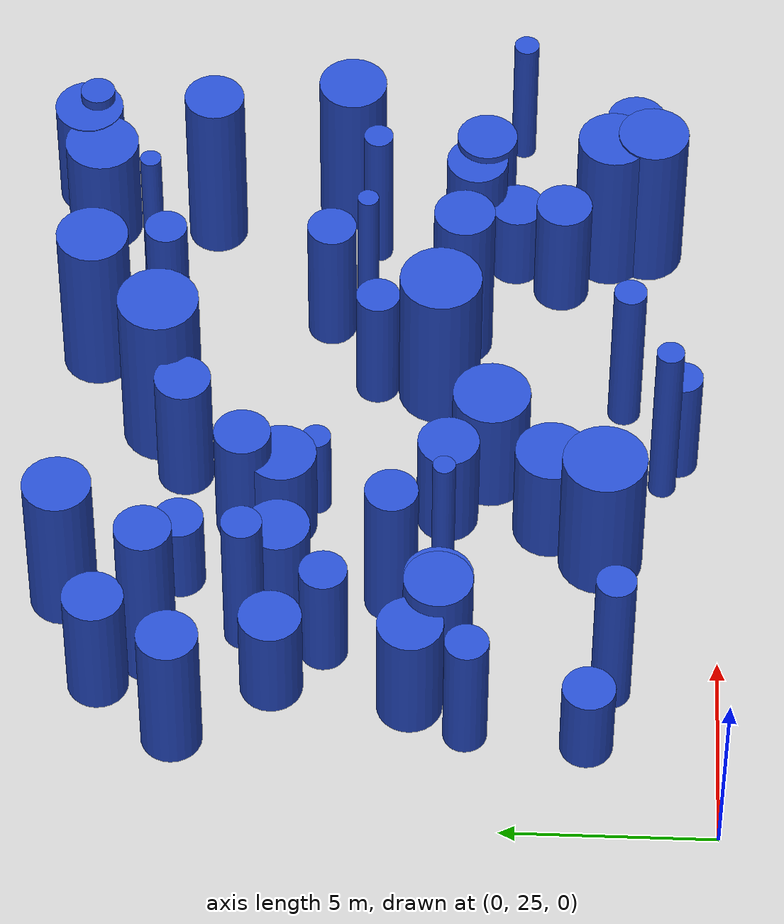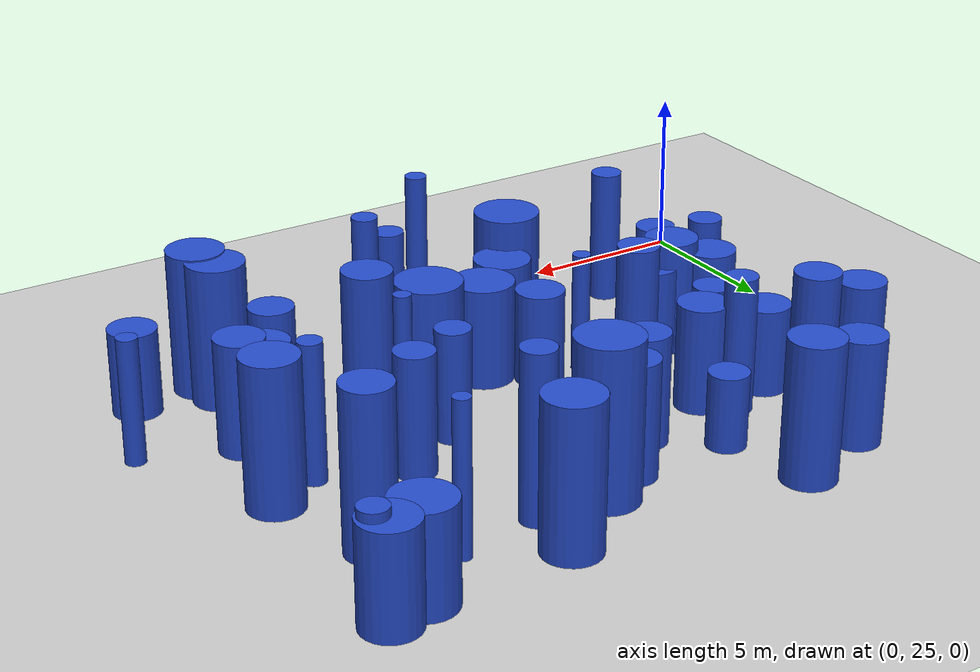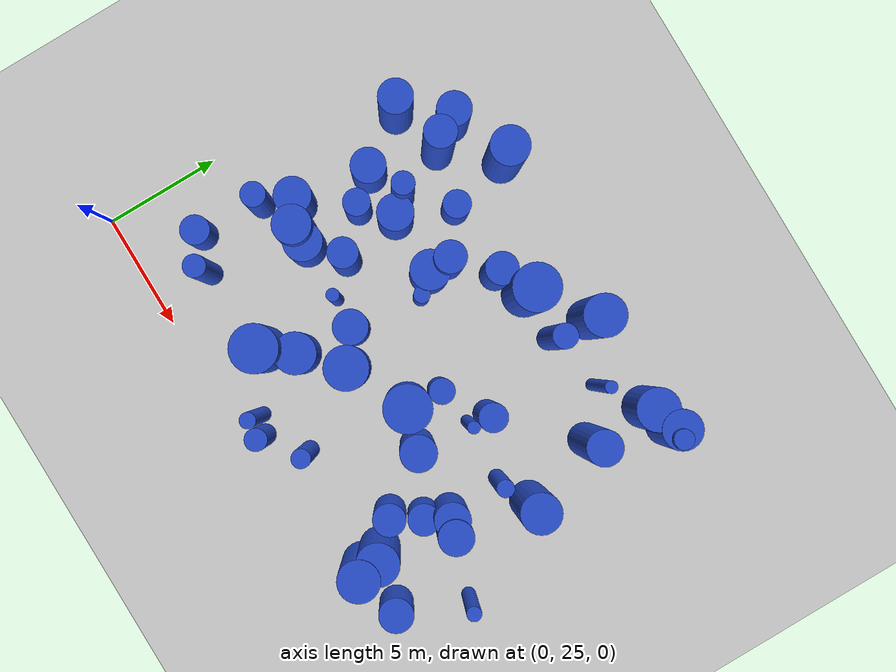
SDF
<sdf version="1.6">
 <world name="default">
  <model name="ground_plane">
   <static>1</static>
   <link name="link">
    <collision name="collision">
     <geometry><plane><normal>0 0 1</normal><size>100 100</size></plane></geometry>
     <surface><friction><ode><mu>100</mu><mu2>50</mu2></ode></friction></surface>
    </collision>
    <visual name="visual">
     <cast_shadows>0</cast_shadows>
     <geometry><plane><normal>0 0 1</normal><size>100 100</size></plane></geometry>
     <material>
      <script><uri>file://media/materials/scripts/gazebo.material</uri><name>Gazebo/Grey</name></script>
     </material>
    </visual>
   </link>
  </model>
  <model name="1">
   <static>0</static>
   <link name="link">
    <inertial>
     <mass>2</mass>
     <inertia><ixx>1.7057</ixx><ixy>0</ixy><ixz>0</ixz><iyy>1.7057</iyy><iyz>0</iyz><izz>0.32089</izz></inertia>
    </inertial>
    <collision name="collision">
     <geometry><cylinder><length>3.04492</length><radius>0.566472</radius></cylinder></geometry>
     <surface><contact><collide_without_contact>1</collide_without_contact></contact></surface>
    </collision>
    <visual name="visual">
     <geometry><cylinder><length>3.04492</length><radius>0.566472</radius></cylinder></geometry>
     <material>
      <script><uri>file://media/materials/scripts/gazebo.material</uri><name>Gazebo/Blue</name></script>
     </material>
    </visual>
    <gravity>0</gravity>
   </link>
   <pose>5.05368 34.1911 1.52246 0 -0 0</pose>
  </model>
  <model name="27">
   <static>0</static>
   <link name="link">
    <inertial>
     <mass>2</mass>
     <inertia><ixx>2.96729</ixx><ixy>0</ixy><ixz>0</ixz><iyy>2.96729</iyy><iyz>0</iyz><izz>0.127909</izz></inertia>
    </inertial>
    <collision name="collision">
     <geometry><cylinder><length>4.17373</length><radius>0.357643</radius></cylinder></geometry>
     <surface><contact><collide_without_contact>1</collide_without_contact></contact></surface>
    </collision>
    <visual name="visual">
     <geometry><cylinder><length>4.17373</length><radius>0.357643</radius></cylinder></geometry>
     <material>
      <script><uri>file://media/materials/scripts/gazebo.material</uri><name>Gazebo/Blue</name></script>
     </material>
    </visual>
    <gravity>0</gravity>
   </link>
   <pose>17.6873 33.3868 2.08686 0 -0 0</pose>
  </model>
  <model name="38">
   <static>0</static>
   <link name="link">
    <inertial>
     <mass>2</mass>
     <inertia><ixx>4.19414</ixx><ixy>0</ixy><ixz>0</ixz><iyy>4.19414</iyy><iyz>0</iyz><izz>0.44377</izz></inertia>
    </inertial>
    <collision name="collision">
     <geometry><cylinder><length>4.88196</length><radius>0.66616</radius></cylinder></geometry>
     <surface><contact><collide_without_contact>1</collide_without_contact></contact></surface>
    </collision>
    <visual name="visual">
     <geometry><cylinder><length>4.88196</length><radius>0.66616</radius></cylinder></geometry>
     <material>
      <script><uri>file://media/materials/scripts/gazebo.material</uri><name>Gazebo/Blue</name></script>
     </material>
    </visual>
    <gravity>0</gravity>
   </link>
   <pose>4.65444 38.2486 2.44098 0 -0 0</pose>
  </model>
  <model name="39">
   <static>0</static>
   <link name="link">
    <inertial>
     <mass>2</mass>
     <inertia><ixx>1.84137</ixx><ixy>0</ixy><ixz>0</ixz><iyy>1.84137</iyy><iyz>0</iyz><izz>0.459908</izz></inertia>
    </inertial>
    <collision name="collision">
     <geometry><cylinder><length>3.10942</length><radius>0.678165</radius></cylinder></geometry>
     <surface><contact><collide_without_contact>1</collide_without_contact></contact></surface>
    </collision>
    <visual name="visual">
     <geometry><cylinder><length>3.10942</length><radius>0.678165</radius></cylinder></geometry>
     <material>
      <script><uri>file://media/materials/scripts/gazebo.material</uri><name>Gazebo/Blue</name></script>
     </material>
    </visual>
    <gravity>0</gravity>
   </link>
   <pose>16.5405 28.8099 1.55471 0 -0 0</pose>
  </model>
  <model name="49">
   <static>0</static>
   <link name="link">
    <inertial>
     <mass>2</mass>
     <inertia><ixx>1.03869</ixx><ixy>0</ixy><ixz>0</ixz><iyy>1.03869</iyy><iyz>0</iyz><izz>0.208201</izz></inertia>
    </inertial>
    <collision name="collision">
     <geometry><cylinder><length>2.36803</length><radius>0.45629</radius></cylinder></geometry>
     <surface><contact><collide_without_contact>1</collide_without_contact></contact></surface>
    </collision>
    <visual name="visual">
     <geometry><cylinder><length>2.36803</length><radius>0.45629</radius></cylinder></geometry>
     <material>
      <script><uri>file://media/materials/scripts/gazebo.material</uri><name>Gazebo/Blue</name></script>
     </material>
    </visual>
    <gravity>0</gravity>
   </link>
   <pose>12.9469 31.5137 1.18401 0 -0 0</pose>
  </model>
  <model name="50">
   <static>0</static>
   <link name="link">
    <inertial>
     <mass>2</mass>
     <inertia><ixx>3.72286</ixx><ixy>0</ixy><ixz>0</ixz><iyy>3.72286</iyy><iyz>0</iyz><izz>0.752278</izz></inertia>
    </inertial>
    <collision name="collision">
     <geometry><cylinder><length>4.4811</length><radius>0.86734</radius></cylinder></geometry>
     <surface><contact><collide_without_contact>1</collide_without_contact></contact></surface>
    </collision>
    <visual name="visual">
     <geometry><cylinder><length>4.4811</length><radius>0.86734</radius></cylinder></geometry>
     <material>
      <script><uri>file://media/materials/scripts/gazebo.material</uri><name>Gazebo/Blue</name></script>
     </material>
    </visual>
    <gravity>0</gravity>
   </link>
   <pose>13.9115 40.0974 2.24055 0 -0 0</pose>
  </model>
  <model name="61">
   <static>0</static>
   <link name="link">
    <inertial>
     <mass>2</mass>
     <inertia>
      <ixx>4.01912</ixx>
      <ixy>0</ixy>
      <ixz>0</ixz>
      <iyy>4.01912</iyy>
      <iyz>0</iyz>
      <izz>0.0645632</izz>
     </inertia>
    </inertial>
    <collision name="collision">
     <geometry><cylinder><length>4.89091</length><radius>0.254093</radius></cylinder></geometry>
     <surface><contact><collide_without_contact>1</collide_without_contact></contact></surface>
    </collision>
    <visual name="visual">
     <geometry><cylinder><length>4.89091</length><radius>0.254093</radius></cylinder></geometry>
     <material>
      <script><uri>file://media/materials/scripts/gazebo.material</uri><name>Gazebo/Blue</name></script>
     </material>
    </visual>
    <gravity>0</gravity>
   </link>
   <pose>14.9692 33.5353 2.44546 0 -0 0</pose>
  </model>
  <model name="63">
   <static>0</static>
   <link name="link">
    <inertial>
     <mass>2</mass>
     <inertia><ixx>1.90981</ixx><ixy>0</ixy><ixz>0</ixz><iyy>1.90981</iyy><iyz>0</iyz><izz>0.596313</izz></inertia>
    </inertial>
    <collision name="collision">
     <geometry><cylinder><length>3.10965</length><radius>0.772213</radius></cylinder></geometry>
     <surface><contact><collide_without_contact>1</collide_without_contact></contact></surface>
    </collision>
    <visual name="visual">
     <geometry><cylinder><length>3.10965</length><radius>0.772213</radius></cylinder></geometry>
     <material>
      <script><uri>file://media/materials/scripts/gazebo.material</uri><name>Gazebo/Blue</name></script>
     </material>
    </visual>
    <gravity>0</gravity>
   </link>
   <pose>3.52675 32.1403 1.55483 0 -0 0</pose>
  </model>
  <model name="75">
   <static>0</static>
   <link name="link">
    <inertial>
     <mass>2</mass>
     <inertia><ixx>2.73538</ixx><ixy>0</ixy><ixz>0</ixz><iyy>2.73538</iyy><iyz>0</iyz><izz>0.514926</izz></inertia>
    </inertial>
    <collision name="collision">
     <geometry><cylinder><length>3.85584</length><radius>0.717584</radius></cylinder></geometry>
     <surface><contact><collide_without_contact>1</collide_without_contact></contact></surface>
    </collision>
    <visual name="visual">
     <geometry><cylinder><length>3.85584</length><radius>0.717584</radius></cylinder></geometry>
     <material>
      <script><uri>file://media/materials/scripts/gazebo.material</uri><name>Gazebo/Blue</name></script>
     </material>
    </visual>
    <gravity>0</gravity>
   </link>
   <pose>2.41334 37.5859 1.92792 0 -0 0</pose>
  </model>
  <model name="89">
   <static>0</static>
   <link name="link">
    <inertial>
     <mass>2</mass>
     <inertia>
      <ixx>2.40436</ixx>
      <ixy>0</ixy>
      <ixz>0</ixz>
      <iyy>2.40436</iyy>
      <iyz>0</iyz>
      <izz>0.0933567</izz>
     </inertia>
    </inertial>
    <collision name="collision">
     <geometry><cylinder><length>3.76113</length><radius>0.305543</radius></cylinder></geometry>
     <surface><contact><collide_without_contact>1</collide_without_contact></contact></surface>
    </collision>
    <visual name="visual">
     <geometry><cylinder><length>3.76113</length><radius>0.305543</radius></cylinder></geometry>
     <material>
      <script><uri>file://media/materials/scripts/gazebo.material</uri><name>Gazebo/Blue</name></script>
     </material>
    </visual>
    <gravity>0</gravity>
   </link>
   <pose>21.3115 29.8257 1.88056 0 -0 0</pose>
  </model>
  <model name="93">
   <static>0</static>
   <link name="link">
    <inertial>
     <mass>2</mass>
     <inertia><ixx>2.00699</ixx><ixy>0</ixy><ixz>0</ixz><iyy>2.00699</iyy><iyz>0</iyz><izz>0.571679</izz></inertia>
    </inertial>
    <collision name="collision">
     <geometry><cylinder><length>3.21355</length><radius>0.756095</radius></cylinder></geometry>
     <surface><contact><collide_without_contact>1</collide_without_contact></contact></surface>
    </collision>
    <visual name="visual">
     <geometry><cylinder><length>3.21355</length><radius>0.756095</radius></cylinder></geometry>
     <material>
      <script><uri>file://media/materials/scripts/gazebo.material</uri><name>Gazebo/Blue</name></script>
     </material>
    </visual>
    <gravity>0</gravity>
   </link>
   <pose>6.21176 35.2915 1.60678 0 -0 0</pose>
  </model>
  <model name="104">
   <static>0</static>
   <link name="link">
    <inertial>
     <mass>2</mass>
     <inertia><ixx>1.92082</ixx><ixy>0</ixy><ixz>0</ixz><iyy>1.92082</iyy><iyz>0</iyz><izz>0.825903</izz></inertia>
    </inertial>
    <collision name="collision">
     <geometry><cylinder><length>3.00786</length><radius>0.908792</radius></cylinder></geometry>
     <surface><contact><collide_without_contact>1</collide_without_contact></contact></surface>
    </collision>
    <visual name="visual">
     <geometry><cylinder><length>3.00786</length><radius>0.908792</radius></cylinder></geometry>
     <material>
      <script><uri>file://media/materials/scripts/gazebo.material</uri><name>Gazebo/Blue</name></script>
     </material>
    </visual>
    <gravity>0</gravity>
   </link>
   <pose>18.3119 40.2452 1.50393 0 -0 0</pose>
  </model>
  <model name="119">
   <static>0</static>
   <link name="link">
    <inertial>
     <mass>2</mass>
     <inertia><ixx>1.01805</ixx><ixy>0</ixy><ixz>0</ixz><iyy>1.01805</iyy><iyz>0</iyz><izz>0.447713</izz></inertia>
    </inertial>
    <collision name="collision">
     <geometry><cylinder><length>2.18293</length><radius>0.669113</radius></cylinder></geometry>
     <surface><contact><collide_without_contact>1</collide_without_contact></contact></surface>
    </collision>
    <visual name="visual">
     <geometry><cylinder><length>2.18293</length><radius>0.669113</radius></cylinder></geometry>
     <material>
      <script><uri>file://media/materials/scripts/gazebo.material</uri><name>Gazebo/Blue</name></script>
     </material>
    </visual>
    <gravity>0</gravity>
   </link>
   <pose>17.3628 29.9476 1.09146 0 -0 0</pose>
  </model>
  <model name="130">
   <static>0</static>
   <link name="link">
    <inertial>
     <mass>2</mass>
     <inertia><ixx>3.39599</ixx><ixy>0</ixy><ixz>0</ixz><iyy>3.39599</iyy><iyz>0</iyz><izz>0.973982</izz></inertia>
    </inertial>
    <collision name="collision">
     <geometry><cylinder><length>4.1778</length><radius>0.986905</radius></cylinder></geometry>
     <surface><contact><collide_without_contact>1</collide_without_contact></contact></surface>
    </collision>
    <visual name="visual">
     <geometry><cylinder><length>4.1778</length><radius>0.986905</radius></cylinder></geometry>
     <material>
      <script><uri>file://media/materials/scripts/gazebo.material</uri><name>Gazebo/Blue</name></script>
     </material>
    </visual>
    <gravity>0</gravity>
   </link>
   <pose>13.0958 31.7293 2.0889 0 -0 0</pose>
  </model>
  <model name="131">
   <static>0</static>
   <link name="link">
    <inertial>
     <mass>2</mass>
     <inertia><ixx>1.00721</ixx><ixy>0</ixy><ixz>0</ixz><iyy>1.00721</iyy><iyz>0</iyz><izz>0.383866</izz></inertia>
    </inertial>
    <collision name="collision">
     <geometry><cylinder><length>2.2117</length><radius>0.61957</radius></cylinder></geometry>
     <surface><contact><collide_without_contact>1</collide_without_contact></contact></surface>
    </collision>
    <visual name="visual">
     <geometry><cylinder><length>2.2117</length><radius>0.61957</radius></cylinder></geometry>
     <material>
      <script><uri>file://media/materials/scripts/gazebo.material</uri><name>Gazebo/Blue</name></script>
     </material>
    </visual>
    <gravity>0</gravity>
   </link>
   <pose>2.52632 28.0362 1.10585 0 -0 0</pose>
  </model>
  <model name="136">
   <static>0</static>
   <link name="link">
    <inertial>
     <mass>2</mass>
     <inertia><ixx>1.51332</ixx><ixy>0</ixy><ixz>0</ixz><iyy>1.51332</iyy><iyz>0</iyz><izz>0.707687</izz></inertia>
    </inertial>
    <collision name="collision">
     <geometry><cylinder><length>2.63759</length><radius>0.841241</radius></cylinder></geometry>
     <surface><contact><collide_without_contact>1</collide_without_contact></contact></surface>
    </collision>
    <visual name="visual">
     <geometry><cylinder><length>2.63759</length><radius>0.841241</radius></cylinder></geometry>
     <material>
      <script><uri>file://media/materials/scripts/gazebo.material</uri><name>Gazebo/Blue</name></script>
     </material>
    </visual>
    <gravity>0</gravity>
   </link>
   <pose>8.84388 35.3527 1.31879 0 -0 0</pose>
  </model>
  <model name="139">
   <static>0</static>
   <link name="link">
    <inertial>
     <mass>2</mass>
     <inertia><ixx>2.02174</ixx><ixy>0</ixy><ixz>0</ixz><iyy>2.02174</iyy><iyz>0</iyz><izz>0.279239</izz></inertia>
    </inertial>
    <collision name="collision">
     <geometry><cylinder><length>3.36046</length><radius>0.528431</radius></cylinder></geometry>
     <surface><contact><collide_without_contact>1</collide_without_contact></contact></surface>
    </collision>
    <visual name="visual">
     <geometry><cylinder><length>3.36046</length><radius>0.528431</radius></cylinder></geometry>
     <material>
      <script><uri>file://media/materials/scripts/gazebo.material</uri><name>Gazebo/Blue</name></script>
     </material>
    </visual>
    <gravity>0</gravity>
   </link>
   <pose>13.2306 33.2333 1.68023 0 -0 0</pose>
  </model>
  <model name="141">
   <static>0</static>
   <link name="link">
    <inertial>
     <mass>2</mass>
     <inertia>
      <ixx>1.62132</ixx>
      <ixy>0</ixy>
      <ixz>0</ixz>
      <iyy>1.62132</iyy>
      <iyz>0</iyz>
      <izz>0.0885588</izz>
     </inertia>
    </inertial>
    <collision name="collision">
     <geometry><cylinder><length>3.07608</length><radius>0.297588</radius></cylinder></geometry>
     <surface><contact><collide_without_contact>1</collide_without_contact></contact></surface>
    </collision>
    <visual name="visual">
     <geometry><cylinder><length>3.07608</length><radius>0.297588</radius></cylinder></geometry>
     <material>
      <script><uri>file://media/materials/scripts/gazebo.material</uri><name>Gazebo/Blue</name></script>
     </material>
    </visual>
    <gravity>0</gravity>
   </link>
   <pose>3.8277 32.3476 1.53804 0 -0 0</pose>
  </model>
  <model name="148">
   <static>0</static>
   <link name="link">
    <inertial>
     <mass>2</mass>
     <inertia><ixx>3.28458</ixx><ixy>0</ixy><ixz>0</ixz><iyy>3.28458</iyy><iyz>0</iyz><izz>0.657645</izz></inertia>
    </inertial>
    <collision name="collision">
     <geometry><cylinder><length>4.21124</length><radius>0.810953</radius></cylinder></geometry>
     <surface><contact><collide_without_contact>1</collide_without_contact></contact></surface>
    </collision>
    <visual name="visual">
     <geometry><cylinder><length>4.21124</length><radius>0.810953</radius></cylinder></geometry>
     <material>
      <script><uri>file://media/materials/scripts/gazebo.material</uri><name>Gazebo/Blue</name></script>
     </material>
    </visual>
    <gravity>0</gravity>
   </link>
   <pose>6.40553 40.373 2.10562 0 -0 0</pose>
  </model>
  <model name="157">
   <static>0</static>
   <link name="link">
    <inertial>
     <mass>2</mass>
     <inertia><ixx>2.97609</ixx><ixy>0</ixy><ixz>0</ixz><iyy>2.97609</iyy><iyz>0</iyz><izz>0.230084</izz></inertia>
    </inertial>
    <collision name="collision">
     <geometry><cylinder><length>4.14322</length><radius>0.47967</radius></cylinder></geometry>
     <surface><contact><collide_without_contact>1</collide_without_contact></contact></surface>
    </collision>
    <visual name="visual">
     <geometry><cylinder><length>4.14322</length><radius>0.47967</radius></cylinder></geometry>
     <material>
      <script><uri>file://media/materials/scripts/gazebo.material</uri><name>Gazebo/Blue</name></script>
     </material>
    </visual>
    <gravity>0</gravity>
   </link>
   <pose>5.5037 36.0728 2.07161 0 -0 0</pose>
  </model>
  <model name="163">
   <static>0</static>
   <link name="link">
    <inertial>
     <mass>2</mass>
     <inertia><ixx>1.08186</ixx><ixy>0</ixy><ixz>0</ixz><iyy>1.08186</iyy><iyz>0</iyz><izz>0.122551</izz></inertia>
    </inertial>
    <collision name="collision">
     <geometry><cylinder><length>2.47457</length><radius>0.350073</radius></cylinder></geometry>
     <surface><contact><collide_without_contact>1</collide_without_contact></contact></surface>
    </collision>
    <visual name="visual">
     <geometry><cylinder><length>2.47457</length><radius>0.350073</radius></cylinder></geometry>
     <material>
      <script><uri>file://media/materials/scripts/gazebo.material</uri><name>Gazebo/Blue</name></script>
     </material>
    </visual>
    <gravity>0</gravity>
   </link>
   <pose>9.51663 34.5533 1.23729 0 -0 0</pose>
  </model>
  <model name="180">
   <static>0</static>
   <link name="link">
    <inertial>
     <mass>2</mass>
     <inertia>
      <ixx>1.46639</ixx>
      <ixy>0</ixy>
      <ixz>0</ixz>
      <iyy>1.46639</iyy>
      <iyz>0</iyz>
      <izz>0.0758042</izz>
     </inertia>
    </inertial>
    <collision name="collision">
     <geometry><cylinder><length>2.92762</length><radius>0.275326</radius></cylinder></geometry>
     <surface><contact><collide_without_contact>1</collide_without_contact></contact></surface>
    </collision>
    <visual name="visual">
     <geometry><cylinder><length>2.92762</length><radius>0.275326</radius></cylinder></geometry>
     <material>
      <script><uri>file://media/materials/scripts/gazebo.material</uri><name>Gazebo/Blue</name></script>
     </material>
    </visual>
    <gravity>0</gravity>
   </link>
   <pose>5.12463 34.3902 1.46381 0 -0 0</pose>
  </model>
  <model name="197">
   <static>0</static>
   <link name="link">
    <inertial>
     <mass>2</mass>
     <inertia><ixx>3.29965</ixx><ixy>0</ixy><ixz>0</ixz><iyy>3.29965</iyy><iyz>0</iyz><izz>0.154642</izz></inertia>
    </inertial>
    <collision name="collision">
     <geometry><cylinder><length>4.39704</length><radius>0.393245</radius></cylinder></geometry>
     <surface><contact><collide_without_contact>1</collide_without_contact></contact></surface>
    </collision>
    <visual name="visual">
     <geometry><cylinder><length>4.39704</length><radius>0.393245</radius></cylinder></geometry>
     <material>
      <script><uri>file://media/materials/scripts/gazebo.material</uri><name>Gazebo/Blue</name></script>
     </material>
    </visual>
    <gravity>0</gravity>
   </link>
   <pose>18.9599 33.9575 2.19852 0 -0 0</pose>
  </model>
  <model name="208">
   <static>0</static>
   <link name="link">
    <inertial>
     <mass>2</mass>
     <inertia><ixx>4.14013</ixx><ixy>0</ixy><ixz>0</ixz><iyy>4.14013</iyy><iyz>0</iyz><izz>0.529573</izz></inertia>
    </inertial>
    <collision name="collision">
     <geometry><cylinder><length>4.82204</length><radius>0.727718</radius></cylinder></geometry>
     <surface><contact><collide_without_contact>1</collide_without_contact></contact></surface>
    </collision>
    <visual name="visual">
     <geometry><cylinder><length>4.82204</length><radius>0.727718</radius></cylinder></geometry>
     <material>
      <script><uri>file://media/materials/scripts/gazebo.material</uri><name>Gazebo/Blue</name></script>
     </material>
    </visual>
    <gravity>0</gravity>
   </link>
   <pose>18.2233 37.4165 2.41102 0 -0 0</pose>
  </model>
  <model name="217">
   <static>0</static>
   <link name="link">
    <inertial>
     <mass>2</mass>
     <inertia><ixx>1.62463</ixx><ixy>0</ixy><ixz>0</ixz><iyy>1.62463</iyy><iyz>0</iyz><izz>0.538229</izz></inertia>
    </inertial>
    <collision name="collision">
     <geometry><cylinder><length>2.85186</length><radius>0.733641</radius></cylinder></geometry>
     <surface><contact><collide_without_contact>1</collide_without_contact></contact></surface>
    </collision>
    <visual name="visual">
     <geometry><cylinder><length>2.85186</length><radius>0.733641</radius></cylinder></geometry>
     <material>
      <script><uri>file://media/materials/scripts/gazebo.material</uri><name>Gazebo/Blue</name></script>
     </material>
    </visual>
    <gravity>0</gravity>
   </link>
   <pose>9.16884 31.4224 1.42593 0 -0 0</pose>
  </model>
  <model name="243">
   <static>0</static>
   <link name="link">
    <inertial>
     <mass>2</mass>
     <inertia><ixx>1.88846</ixx><ixy>0</ixy><ixz>0</ixz><iyy>1.88846</iyy><iyz>0</iyz><izz>0.713158</izz></inertia>
    </inertial>
    <collision name="collision">
     <geometry><cylinder><length>3.03171</length><radius>0.844487</radius></cylinder></geometry>
     <surface><contact><collide_without_contact>1</collide_without_contact></contact></surface>
    </collision>
    <visual name="visual">
     <geometry><cylinder><length>3.03171</length><radius>0.844487</radius></cylinder></geometry>
     <material>
      <script><uri>file://media/materials/scripts/gazebo.material</uri><name>Gazebo/Blue</name></script>
     </material>
    </visual>
    <gravity>0</gravity>
   </link>
   <pose>19.4892 40.6444 1.51586 0 -0 0</pose>
  </model>
  <model name="245">
   <static>0</static>
   <link name="link">
    <inertial>
     <mass>2</mass>
     <inertia><ixx>1.91162</ixx><ixy>0</ixy><ixz>0</ixz><iyy>1.91162</iyy><iyz>0</iyz><izz>0.180351</izz></inertia>
    </inertial>
    <collision name="collision">
     <geometry><cylinder><length>3.30585</length><radius>0.424677</radius></cylinder></geometry>
     <surface><contact><collide_without_contact>1</collide_without_contact></contact></surface>
    </collision>
    <visual name="visual">
     <geometry><cylinder><length>3.30585</length><radius>0.424677</radius></cylinder></geometry>
     <material>
      <script><uri>file://media/materials/scripts/gazebo.material</uri><name>Gazebo/Blue</name></script>
     </material>
    </visual>
    <gravity>0</gravity>
   </link>
   <pose>19.7797 40.4443 1.65293 0 -0 0</pose>
  </model>
  <model name="253">
   <static>0</static>
   <link name="link">
    <inertial>
     <mass>2</mass>
     <inertia><ixx>3.61777</ixx><ixy>0</ixy><ixz>0</ixz><iyy>3.61777</iyy><iyz>0</iyz><izz>0.690092</izz></inertia>
    </inertial>
    <collision name="collision">
     <geometry><cylinder><length>4.43129</length><radius>0.830718</radius></cylinder></geometry>
     <surface><contact><collide_without_contact>1</collide_without_contact></contact></surface>
    </collision>
    <visual name="visual">
     <geometry><cylinder><length>4.43129</length><radius>0.830718</radius></cylinder></geometry>
     <material>
      <script><uri>file://media/materials/scripts/gazebo.material</uri><name>Gazebo/Blue</name></script>
     </material>
    </visual>
    <gravity>0</gravity>
   </link>
   <pose>19.1888 34.0688 2.21565 0 -0 0</pose>
  </model>
  <model name="261">
   <static>0</static>
   <link name="link">
    <inertial>
     <mass>2</mass>
     <inertia><ixx>1.59799</ixx><ixy>0</ixy><ixz>0</ixz><iyy>1.59799</iyy><iyz>0</iyz><izz>0.664909</izz></inertia>
    </inertial>
    <collision name="collision">
     <geometry><cylinder><length>2.75558</length><radius>0.81542</radius></cylinder></geometry>
     <surface><contact><collide_without_contact>1</collide_without_contact></contact></surface>
    </collision>
    <visual name="visual">
     <geometry><cylinder><length>2.75558</length><radius>0.81542</radius></cylinder></geometry>
     <material>
      <script><uri>file://media/materials/scripts/gazebo.material</uri><name>Gazebo/Blue</name></script>
     </material>
    </visual>
    <gravity>0</gravity>
   </link>
   <pose>5.24713 31.5423 1.37779 0 -0 0</pose>
  </model>
  <model name="263">
   <static>0</static>
   <link name="link">
    <inertial>
     <mass>2</mass>
     <inertia><ixx>2.23006</ixx><ixy>0</ixy><ixz>0</ixz><iyy>2.23006</iyy><iyz>0</iyz><izz>0.544185</izz></inertia>
    </inertial>
    <collision name="collision">
     <geometry><cylinder><length>3.4275</length><radius>0.737689</radius></cylinder></geometry>
     <surface><contact><collide_without_contact>1</collide_without_contact></contact></surface>
    </collision>
    <visual name="visual">
     <geometry><cylinder><length>3.4275</length><radius>0.737689</radius></cylinder></geometry>
     <material>
      <script><uri>file://media/materials/scripts/gazebo.material</uri><name>Gazebo/Blue</name></script>
     </material>
    </visual>
    <gravity>0</gravity>
   </link>
   <pose>18.4664 30.7391 1.71375 0 -0 0</pose>
  </model>
  <model name="276">
   <static>0</static>
   <link name="link">
    <inertial>
     <mass>2</mass>
     <inertia>
      <ixx>3.47017</ixx>
      <ixy>0</ixy>
      <ixz>0</ixz>
      <iyy>3.47017</iyy>
      <iyz>0</iyz>
      <izz>0.0649683</izz>
     </inertia>
    </inertial>
    <collision name="collision">
     <geometry><cylinder><length>4.5416</length><radius>0.254889</radius></cylinder></geometry>
     <surface><contact><collide_without_contact>1</collide_without_contact></contact></surface>
    </collision>
    <visual name="visual">
     <geometry><cylinder><length>4.5416</length><radius>0.254889</radius></cylinder></geometry>
     <material>
      <script><uri>file://media/materials/scripts/gazebo.material</uri><name>Gazebo/Blue</name></script>
     </material>
    </visual>
    <gravity>0</gravity>
   </link>
   <pose>16.3851 38.8601 2.2708 0 -0 0</pose>
  </model>
  <model name="292">
   <static>0</static>
   <link name="link">
    <inertial>
     <mass>2</mass>
     <inertia><ixx>3.94851</ixx><ixy>0</ixy><ixz>0</ixz><iyy>3.94851</iyy><iyz>0</iyz><izz>0.541728</izz></inertia>
    </inertial>
    <collision name="collision">
     <geometry><cylinder><length>4.69744</length><radius>0.736022</radius></cylinder></geometry>
     <surface><contact><collide_without_contact>1</collide_without_contact></contact></surface>
    </collision>
    <visual name="visual">
     <geometry><cylinder><length>4.69744</length><radius>0.736022</radius></cylinder></geometry>
     <material>
      <script><uri>file://media/materials/scripts/gazebo.material</uri><name>Gazebo/Blue</name></script>
     </material>
    </visual>
    <gravity>0</gravity>
   </link>
   <pose>14.751 31.215 2.34872 0 -0 0</pose>
  </model>
  <model name="321">
   <static>0</static>
   <link name="link">
    <inertial>
     <mass>2</mass>
     <inertia><ixx>3.00978</ixx><ixy>0</ixy><ixz>0</ixz><iyy>3.00978</iyy><iyz>0</iyz><izz>0.219151</izz></inertia>
    </inertial>
    <collision name="collision">
     <geometry><cylinder><length>4.17148</length><radius>0.468135</radius></cylinder></geometry>
     <surface><contact><collide_without_contact>1</collide_without_contact></contact></surface>
    </collision>
    <visual name="visual">
     <geometry><cylinder><length>4.17148</length><radius>0.468135</radius></cylinder></geometry>
     <material>
      <script><uri>file://media/materials/scripts/gazebo.material</uri><name>Gazebo/Blue</name></script>
     </material>
    </visual>
    <gravity>0</gravity>
   </link>
   <pose>4.09544 27.4935 2.08574 0 -0 0</pose>
  </model>
  <model name="330">
   <static>0</static>
   <link name="link">
    <inertial>
     <mass>2</mass>
     <inertia><ixx>2.36561</ixx><ixy>0</ixy><ixz>0</ixz><iyy>2.36561</iyy><iyz>0</iyz><izz>0.651753</izz></inertia>
    </inertial>
    <collision name="collision">
     <geometry><cylinder><length>3.49834</length><radius>0.807312</radius></cylinder></geometry>
     <surface><contact><collide_without_contact>1</collide_without_contact></contact></surface>
    </collision>
    <visual name="visual">
     <geometry><cylinder><length>3.49834</length><radius>0.807312</radius></cylinder></geometry>
     <material>
      <script><uri>file://media/materials/scripts/gazebo.material</uri><name>Gazebo/Blue</name></script>
     </material>
    </visual>
    <gravity>0</gravity>
   </link>
   <pose>4.54309 31.5317 1.74917 0 -0 0</pose>
  </model>
  <model name="338">
   <static>0</static>
   <link name="link">
    <inertial>
     <mass>2</mass>
     <inertia><ixx>4.29256</ixx><ixy>0</ixy><ixz>0</ixz><iyy>4.29256</iyy><iyz>0</iyz><izz>0.944708</izz></inertia>
    </inertial>
    <collision name="collision">
     <geometry><cylinder><length>4.78761</length><radius>0.971961</radius></cylinder></geometry>
     <surface><contact><collide_without_contact>1</collide_without_contact></contact></surface>
    </collision>
    <visual name="visual">
     <geometry><cylinder><length>4.78761</length><radius>0.971961</radius></cylinder></geometry>
     <material>
      <script><uri>file://media/materials/scripts/gazebo.material</uri><name>Gazebo/Blue</name></script>
     </material>
    </visual>
    <gravity>0</gravity>
   </link>
   <pose>11.6373 38.3673 2.39381 0 -0 0</pose>
  </model>
  <model name="343">
   <static>0</static>
   <link name="link">
    <inertial>
     <mass>2</mass>
     <inertia>
      <ixx>2.27863</ixx>
      <ixy>0</ixy>
      <ixz>0</ixz>
      <iyy>2.27863</iyy>
      <iyz>0</iyz>
      <izz>0.0724876</izz>
     </inertia>
    </inertial>
    <collision name="collision">
     <geometry><cylinder><length>3.66802</length><radius>0.269235</radius></cylinder></geometry>
     <surface><contact><collide_without_contact>1</collide_without_contact></contact></surface>
    </collision>
    <visual name="visual">
     <geometry><cylinder><length>3.66802</length><radius>0.269235</radius></cylinder></geometry>
     <material>
      <script><uri>file://media/materials/scripts/gazebo.material</uri><name>Gazebo/Blue</name></script>
     </material>
    </visual>
    <gravity>0</gravity>
   </link>
   <pose>7.7739 31.4952 1.83401 0 -0 0</pose>
  </model>
  <model name="355">
   <static>0</static>
   <link name="link">
    <inertial>
     <mass>2</mass>
     <inertia><ixx>4.25728</ixx><ixy>0</ixy><ixz>0</ixz><iyy>4.25728</iyy><iyz>0</iyz><izz>0.25607</izz></inertia>
    </inertial>
    <collision name="collision">
     <geometry><cylinder><length>4.9775</length><radius>0.506034</radius></cylinder></geometry>
     <surface><contact><collide_without_contact>1</collide_without_contact></contact></surface>
    </collision>
    <visual name="visual">
     <geometry><cylinder><length>4.9775</length><radius>0.506034</radius></cylinder></geometry>
     <material>
      <script><uri>file://media/materials/scripts/gazebo.material</uri><name>Gazebo/Blue</name></script>
     </material>
    </visual>
    <gravity>0</gravity>
   </link>
   <pose>13.7736 38.305 2.48875 0 -0 0</pose>
  </model>
  <model name="356">
   <static>0</static>
   <link name="link">
    <inertial>
     <mass>2</mass>
     <inertia><ixx>1.7829</ixx><ixy>0</ixy><ixz>0</ixz><iyy>1.7829</iyy><iyz>0</iyz><izz>0.222137</izz></inertia>
    </inertial>
    <collision name="collision">
     <geometry><cylinder><length>3.16718</length><radius>0.471314</radius></cylinder></geometry>
     <surface><contact><collide_without_contact>1</collide_without_contact></contact></surface>
    </collision>
    <visual name="visual">
     <geometry><cylinder><length>3.16718</length><radius>0.471314</radius></cylinder></geometry>
     <material>
      <script><uri>file://media/materials/scripts/gazebo.material</uri><name>Gazebo/Blue</name></script>
     </material>
    </visual>
    <gravity>0</gravity>
   </link>
   <pose>11.0824 25.921 1.58359 0 -0 0</pose>
  </model>
  <model name="358">
   <static>0</static>
   <link name="link">
    <inertial>
     <mass>2</mass>
     <inertia><ixx>1.45407</ixx><ixy>0</ixy><ixz>0</ixz><iyy>1.45407</iyy><iyz>0</iyz><izz>0.544964</izz></inertia>
    </inertial>
    <collision name="collision">
     <geometry><cylinder><length>2.66261</length><radius>0.738217</radius></cylinder></geometry>
     <surface><contact><collide_without_contact>1</collide_without_contact></contact></surface>
    </collision>
    <visual name="visual">
     <geometry><cylinder><length>2.66261</length><radius>0.738217</radius></cylinder></geometry>
     <material>
      <script><uri>file://media/materials/scripts/gazebo.material</uri><name>Gazebo/Blue</name></script>
     </material>
    </visual>
    <gravity>0</gravity>
   </link>
   <pose>3.9739 35.3642 1.33131 0 -0 0</pose>
  </model>
  <model name="367">
   <static>0</static>
   <link name="link">
    <inertial>
     <mass>2</mass>
     <inertia><ixx>2.31468</ixx><ixy>0</ixy><ixz>0</ixz><iyy>2.31468</iyy><iyz>0</iyz><izz>0.458019</izz></inertia>
    </inertial>
    <collision name="collision">
     <geometry><cylinder><length>3.53751</length><radius>0.676771</radius></cylinder></geometry>
     <surface><contact><collide_without_contact>1</collide_without_contact></contact></surface>
    </collision>
    <visual name="visual">
     <geometry><cylinder><length>3.53751</length><radius>0.676771</radius></cylinder></geometry>
     <material>
      <script><uri>file://media/materials/scripts/gazebo.material</uri><name>Gazebo/Blue</name></script>
     </material>
    </visual>
    <gravity>0</gravity>
   </link>
   <pose>10.2948 37.7376 1.76876 0 -0 0</pose>
  </model>
  <model name="368">
   <static>0</static>
   <link name="link">
    <inertial>
     <mass>2</mass>
     <inertia><ixx>3.5613</ixx><ixy>0</ixy><ixz>0</ixz><iyy>3.5613</iyy><iyz>0</iyz><izz>0.740601</izz></inertia>
    </inertial>
    <collision name="collision">
     <geometry><cylinder><length>4.37561</length><radius>0.860582</radius></cylinder></geometry>
     <surface><contact><collide_without_contact>1</collide_without_contact></contact></surface>
    </collision>
    <visual name="visual">
     <geometry><cylinder><length>4.37561</length><radius>0.860582</radius></cylinder></geometry>
     <material>
      <script><uri>file://media/materials/scripts/gazebo.material</uri><name>Gazebo/Blue</name></script>
     </material>
    </visual>
    <gravity>0</gravity>
   </link>
   <pose>17.8138 26.685 2.18781 0 -0 0</pose>
  </model>
  <model name="371">
   <static>0</static>
   <link name="link">
    <inertial>
     <mass>2</mass>
     <inertia><ixx>1.02786</ixx><ixy>0</ixy><ixz>0</ixz><iyy>1.02786</iyy><iyz>0</iyz><izz>0.349934</izz></inertia>
    </inertial>
    <collision name="collision">
     <geometry><cylinder><length>2.26215</length><radius>0.591552</radius></cylinder></geometry>
     <surface><contact><collide_without_contact>1</collide_without_contact></contact></surface>
    </collision>
    <visual name="visual">
     <geometry><cylinder><length>2.26215</length><radius>0.591552</radius></cylinder></geometry>
     <material>
      <script><uri>file://media/materials/scripts/gazebo.material</uri><name>Gazebo/Blue</name></script>
     </material>
    </visual>
    <gravity>0</gravity>
   </link>
   <pose>7.09951 37.6669 1.13108 0 -0 0</pose>
  </model>
  <model name="384">
   <static>0</static>
   <link name="link">
    <inertial>
     <mass>2</mass>
     <inertia><ixx>2.16805</ixx><ixy>0</ixy><ixz>0</ixz><iyy>2.16805</iyy><iyz>0</iyz><izz>0.264632</izz></inertia>
    </inertial>
    <collision name="collision">
     <geometry><cylinder><length>3.49491</length><radius>0.514424</radius></cylinder></geometry>
     <surface><contact><collide_without_contact>1</collide_without_contact></contact></surface>
    </collision>
    <visual name="visual">
     <geometry><cylinder><length>3.49491</length><radius>0.514424</radius></cylinder></geometry>
     <material>
      <script><uri>file://media/materials/scripts/gazebo.material</uri><name>Gazebo/Blue</name></script>
     </material>
    </visual>
    <gravity>0</gravity>
   </link>
   <pose>2.75524 30.8371 1.74746 0 -0 0</pose>
  </model>
  <model name="393">
   <static>0</static>
   <link name="link">
    <inertial>
     <mass>2</mass>
     <inertia><ixx>2.09371</ixx><ixy>0</ixy><ixz>0</ixz><iyy>2.09371</iyy><iyz>0</iyz><izz>0.457985</izz></inertia>
    </inertial>
    <collision name="collision">
     <geometry><cylinder><length>3.34489</length><radius>0.676746</radius></cylinder></geometry>
     <surface><contact><collide_without_contact>1</collide_without_contact></contact></surface>
    </collision>
    <visual name="visual">
     <geometry><cylinder><length>3.34489</length><radius>0.676746</radius></cylinder></geometry>
     <material>
      <script><uri>file://media/materials/scripts/gazebo.material</uri><name>Gazebo/Blue</name></script>
     </material>
    </visual>
    <gravity>0</gravity>
   </link>
   <pose>8.85385 36.2534 1.67245 0 -0 0</pose>
  </model>
  <model name="405">
   <static>0</static>
   <link name="link">
    <inertial>
     <mass>2</mass>
     <inertia><ixx>3.00373</ixx><ixy>0</ixy><ixz>0</ixz><iyy>3.00373</iyy><iyz>0</iyz><izz>0.392896</izz></inertia>
    </inertial>
    <collision name="collision">
     <geometry><cylinder><length>4.10411</length><radius>0.626814</radius></cylinder></geometry>
     <surface><contact><collide_without_contact>1</collide_without_contact></contact></surface>
    </collision>
    <visual name="visual">
     <geometry><cylinder><length>4.10411</length><radius>0.626814</radius></cylinder></geometry>
     <material>
      <script><uri>file://media/materials/scripts/gazebo.material</uri><name>Gazebo/Blue</name></script>
     </material>
    </visual>
    <gravity>0</gravity>
   </link>
   <pose>6.6069 32.6784 2.05205 0 -0 0</pose>
  </model>
  <model name="416">
   <static>0</static>
   <link name="link">
    <inertial>
     <mass>2</mass>
     <inertia><ixx>2.89184</ixx><ixy>0</ixy><ixz>0</ixz><iyy>2.89184</iyy><iyz>0</iyz><izz>0.998111</izz></inertia>
    </inertial>
    <collision name="collision">
     <geometry><cylinder><length>3.78903</length><radius>0.999055</radius></cylinder></geometry>
     <surface><contact><collide_without_contact>1</collide_without_contact></contact></surface>
    </collision>
    <visual name="visual">
     <geometry><cylinder><length>3.78903</length><radius>0.999055</radius></cylinder></geometry>
     <material>
      <script><uri>file://media/materials/scripts/gazebo.material</uri><name>Gazebo/Blue</name></script>
     </material>
    </visual>
    <gravity>0</gravity>
   </link>
   <pose>7.98629 27.7679 1.89451 0 -0 0</pose>
  </model>
  <model name="430">
   <static>0</static>
   <link name="link">
    <inertial>
     <mass>2</mass>
     <inertia><ixx>1.39472</ixx><ixy>0</ixy><ixz>0</ixz><iyy>1.39472</iyy><iyz>0</iyz><izz>0.522092</izz></inertia>
    </inertial>
    <collision name="collision">
     <geometry><cylinder><length>2.60807</length><radius>0.722559</radius></cylinder></geometry>
     <surface><contact><collide_without_contact>1</collide_without_contact></contact></surface>
    </collision>
    <visual name="visual">
     <geometry><cylinder><length>2.60807</length><radius>0.722559</radius></cylinder></geometry>
     <material>
      <script><uri>file://media/materials/scripts/gazebo.material</uri><name>Gazebo/Blue</name></script>
     </material>
    </visual>
    <gravity>0</gravity>
   </link>
   <pose>20.0247 27.0398 1.30404 0 -0 0</pose>
  </model>
  <model name="434">
   <static>0</static>
   <link name="link">
    <inertial>
     <mass>2</mass>
     <inertia><ixx>1.77552</ixx><ixy>0</ixy><ixz>0</ixz><iyy>1.77552</iyy><iyz>0</iyz><izz>0.759968</izz></inertia>
    </inertial>
    <collision name="collision">
     <geometry><cylinder><length>2.89365</length><radius>0.871761</radius></cylinder></geometry>
     <surface><contact><collide_without_contact>1</collide_without_contact></contact></surface>
    </collision>
    <visual name="visual">
     <geometry><cylinder><length>2.89365</length><radius>0.871761</radius></cylinder></geometry>
     <material>
      <script><uri>file://media/materials/scripts/gazebo.material</uri><name>Gazebo/Blue</name></script>
     </material>
    </visual>
    <gravity>0</gravity>
   </link>
   <pose>8.9311 28.9901 1.44683 0 -0 0</pose>
  </model>
  <model name="440">
   <static>0</static>
   <link name="link">
    <inertial>
     <mass>2</mass>
     <inertia><ixx>2.40057</ixx><ixy>0</ixy><ixz>0</ixz><iyy>2.40057</iyy><iyz>0</iyz><izz>0.353775</izz></inertia>
    </inertial>
    <collision name="collision">
     <geometry><cylinder><length>3.65268</length><radius>0.59479</radius></cylinder></geometry>
     <surface><contact><collide_without_contact>1</collide_without_contact></contact></surface>
    </collision>
    <visual name="visual">
     <geometry><cylinder><length>3.65268</length><radius>0.59479</radius></cylinder></geometry>
     <material>
      <script><uri>file://media/materials/scripts/gazebo.material</uri><name>Gazebo/Blue</name></script>
     </material>
    </visual>
    <gravity>0</gravity>
   </link>
   <pose>15.1388 34.4221 1.82634 0 -0 0</pose>
  </model>
  <model name="448">
   <static>0</static>
   <link name="link">
    <inertial>
     <mass>2</mass>
     <inertia><ixx>3.50747</ixx><ixy>0</ixy><ixz>0</ixz><iyy>3.50747</iyy><iyz>0</iyz><izz>0.760154</izz></inertia>
    </inertial>
    <collision name="collision">
     <geometry><cylinder><length>4.33179</length><radius>0.871868</radius></cylinder></geometry>
     <surface><contact><collide_without_contact>1</collide_without_contact></contact></surface>
    </collision>
    <visual name="visual">
     <geometry><cylinder><length>4.33179</length><radius>0.871868</radius></cylinder></geometry>
     <material>
      <script><uri>file://media/materials/scripts/gazebo.material</uri><name>Gazebo/Blue</name></script>
     </material>
    </visual>
    <gravity>0</gravity>
   </link>
   <pose>17.6496 27.6442 2.16589 0 -0 0</pose>
  </model>
  <model name="457">
   <static>0</static>
   <link name="link">
    <inertial>
     <mass>2</mass>
     <inertia><ixx>2.01425</ixx><ixy>0</ixy><ixz>0</ixz><iyy>2.01425</iyy><iyz>0</iyz><izz>0.86354</izz></inertia>
    </inertial>
    <collision name="collision">
     <geometry><cylinder><length>3.08138</length><radius>0.929268</radius></cylinder></geometry>
     <surface><contact><collide_without_contact>1</collide_without_contact></contact></surface>
    </collision>
    <visual name="visual">
     <geometry><cylinder><length>3.08138</length><radius>0.929268</radius></cylinder></geometry>
     <material>
      <script><uri>file://media/materials/scripts/gazebo.material</uri><name>Gazebo/Blue</name></script>
     </material>
    </visual>
    <gravity>0</gravity>
   </link>
   <pose>10.4913 30.4392 1.54069 0 -0 0</pose>
  </model>
  <model name="463">
   <static>0</static>
   <link name="link">
    <inertial>
     <mass>2</mass>
     <inertia><ixx>2.0437</ixx><ixy>0</ixy><ixz>0</ixz><iyy>2.0437</iyy><iyz>0</iyz><izz>0.518364</izz></inertia>
    </inertial>
    <collision name="collision">
     <geometry><cylinder><length>3.27217</length><radius>0.719975</radius></cylinder></geometry>
     <surface><contact><collide_without_contact>1</collide_without_contact></contact></surface>
    </collision>
    <visual name="visual">
     <geometry><cylinder><length>3.27217</length><radius>0.719975</radius></cylinder></geometry>
     <material>
      <script><uri>file://media/materials/scripts/gazebo.material</uri><name>Gazebo/Blue</name></script>
     </material>
    </visual>
    <gravity>0</gravity>
   </link>
   <pose>3.90954 39.3962 1.63609 0 -0 0</pose>
  </model>
  <model name="470">
   <static>0</static>
   <link name="link">
    <inertial>
     <mass>2</mass>
     <inertia><ixx>3.33303</ixx><ixy>0</ixy><ixz>0</ixz><iyy>3.33303</iyy><iyz>0</iyz><izz>0.155039</izz></inertia>
    </inertial>
    <collision name="collision">
     <geometry><cylinder><length>4.41963</length><radius>0.39375</radius></cylinder></geometry>
     <surface><contact><collide_without_contact>1</collide_without_contact></contact></surface>
    </collision>
    <visual name="visual">
     <geometry><cylinder><length>4.41963</length><radius>0.39375</radius></cylinder></geometry>
     <material>
      <script><uri>file://media/materials/scripts/gazebo.material</uri><name>Gazebo/Blue</name></script>
     </material>
    </visual>
    <gravity>0</gravity>
   </link>
   <pose>12.6076 27.2273 2.20981 0 -0 0</pose>
  </model>
  <model name="491">
   <static>0</static>
   <link name="link">
    <inertial>
     <mass>2</mass>
     <inertia><ixx>2.02621</ixx><ixy>0</ixy><ixz>0</ixz><iyy>2.02621</iyy><iyz>0</iyz><izz>0.558399</izz></inertia>
    </inertial>
    <collision name="collision">
     <geometry><cylinder><length>3.2376</length><radius>0.747261</radius></cylinder></geometry>
     <surface><contact><collide_without_contact>1</collide_without_contact></contact></surface>
    </collision>
    <visual name="visual">
     <geometry><cylinder><length>3.2376</length><radius>0.747261</radius></cylinder></geometry>
     <material>
      <script><uri>file://media/materials/scripts/gazebo.material</uri><name>Gazebo/Blue</name></script>
     </material>
    </visual>
    <gravity>0</gravity>
   </link>
   <pose>17.8393 30.9623 1.6188 0 -0 0</pose>
  </model>
  <model name="495">
   <static>0</static>
   <link name="link">
    <inertial>
     <mass>2</mass>
     <inertia><ixx>4.11483</ixx><ixy>0</ixy><ixz>0</ixz><iyy>4.11483</iyy><iyz>0</iyz><izz>0.107314</izz></inertia>
    </inertial>
    <collision name="collision">
     <geometry><cylinder><length>4.9363</length><radius>0.327587</radius></cylinder></geometry>
     <surface><contact><collide_without_contact>1</collide_without_contact></contact></surface>
    </collision>
    <visual name="visual">
     <geometry><cylinder><length>4.9363</length><radius>0.327587</radius></cylinder></geometry>
     <material>
      <script><uri>file://media/materials/scripts/gazebo.material</uri><name>Gazebo/Blue</name></script>
     </material>
    </visual>
    <gravity>0</gravity>
   </link>
   <pose>10.307 26.301 2.46815 0 -0 0</pose>
  </model>
 </world>
</sdf>
